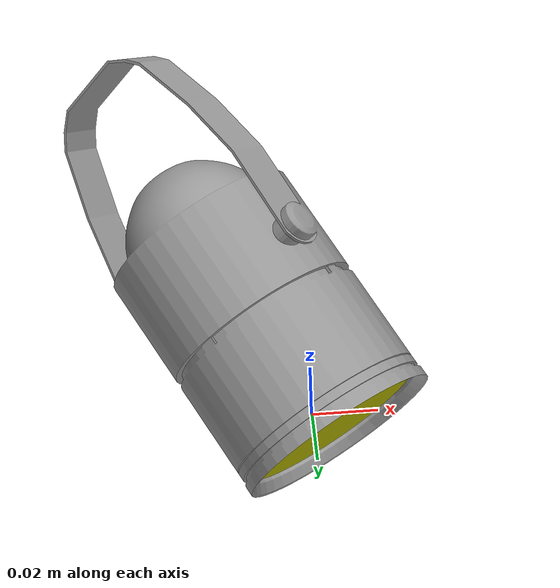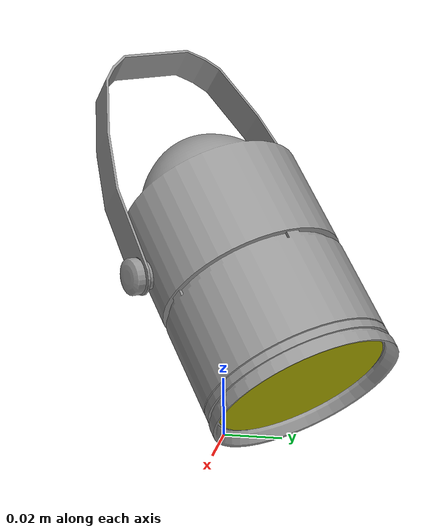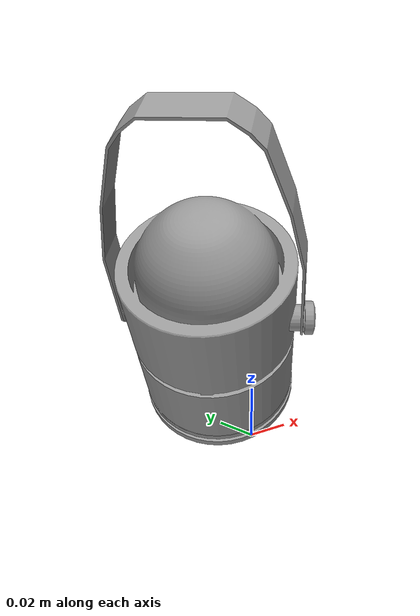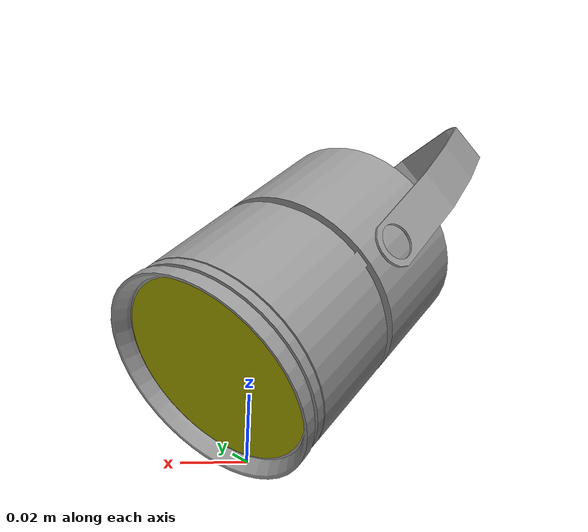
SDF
<?xml version='1.0'?>
<sdf version='1.6'>
  <model name='light'>
    <link name='link_0'>
      <pose frame=''>0.000194 0.001494 0.054387 0 -0 0</pose>
       <visual name='visual'>
        <pose frame=''>0 0 0 0 -0 0</pose>
        <geometry>
          <mesh>
            <uri>model://light/meshes/body.dae</uri>
            <scale>1 1 1</scale>
          </mesh>
        </geometry>
        <material>
          <lighting>1</lighting>
          <script>
            <uri>file://media/materials/scripts/gazebo.material</uri>
            <name>Gazebo/Grey</name>
          </script>
          <ambient>0.1 0.1 0.1 1</ambient>
          <diffuse>0.1 0.1 0.1 1</diffuse>
          <specular>0.01 0.01 0.01 1</specular>
          <emissive>0 0 0 1</emissive>
          <shader type='vertex'>
            <normal_map>__default__</normal_map>
          </shader>
        </material>
        <transparency>0</transparency>
        <cast_shadows>1</cast_shadows>
      </visual>
      <collision name='collision'>
        <laser_retro>0</laser_retro>
        <max_contacts>10</max_contacts>
        <pose frame=''>0 0 0 0 -0 0</pose>
        <geometry>
          <mesh>
            <uri>model://light/meshes/body.dae</uri>
            <scale>1 1 1</scale>
          </mesh>
        </geometry>
        </collision>
    </link>
    <link name='link_1'>
      <pose frame=''>-0.000389 -0.002937 0.071254 0.573662 -0.441163 -0.238641</pose>
      <inertial>
        <mass>1</mass>
        <inertia>
          <ixx>0.166667</ixx>
          <ixy>0</ixy>
          <ixz>0</ixz>
          <iyy>0.166667</iyy>
          <iyz>0</iyz>
          <izz>0.166667</izz>
        </inertia>
        <pose frame=''>0 0 0 0 -0 0</pose>
      </inertial>
      <gravity>1</gravity>
      <self_collide>0</self_collide>
      <kinematic>0</kinematic>
      <visual name='visual'>
        <pose frame=''>0 0 0 0 -0 0</pose>
        <geometry>
          <mesh>
            <uri>model://light/meshes/handle.dae</uri>
            <scale>1 1 1</scale>
          </mesh>
        </geometry>
        <material>
          <lighting>1</lighting>
          <script>
            <uri>file://media/materials/scripts/gazebo.material</uri>
            <name>Gazebo/Grey</name>
          </script>
          <ambient>0.1 0.1 0.1 1</ambient>
          <diffuse>0.1 0.1 0.1 1</diffuse>
          <specular>0.01 0.01 0.01 1</specular>
          <emissive>0 0 0 1</emissive>
          <shader type='vertex'>
            <normal_map>__default__</normal_map>
          </shader>
        </material>
        <transparency>0</transparency>
        <cast_shadows>1</cast_shadows>
      </visual>
      <collision name='collision'>
        <laser_retro>0</laser_retro>
        <max_contacts>10</max_contacts>
        <pose frame=''>0 0 0 0 -0 0</pose>
        <geometry>
          <mesh>
            <uri>model://light/meshes/handle.dae</uri>
            <scale>1 1 1</scale>
          </mesh>
        </geometry>
      </collision>
    </link>
    <link name='link_2'>
      <pose frame=''>0.000194 0.001494 0.054387 0 -0 0</pose>
       <visual name='visual'>
        <pose frame=''>0 0 0 0 -0 0</pose>
        <geometry>
          <mesh>
            <uri>model://light/meshes/lens.dae</uri>
            <scale>1 1 1</scale>
          </mesh>
        </geometry>
        <material>
          <lighting>1</lighting>
          <script>
            <uri>file://media/materials/scripts/gazebo.material</uri>
            <name>Gazebo/Grey</name>
          </script>
          <ambient>0.7 0.7 0 1</ambient>
          <diffuse>0.7 0.7 0 1</diffuse>
          <specular>0.01 0.01 0.01 1</specular>
          <emissive>0 0 0 1</emissive>
          <shader type='vertex'>
            <normal_map>__default__</normal_map>
          </shader>
        </material>
        <transparency>0</transparency>
        <cast_shadows>1</cast_shadows>
      </visual>
      <collision name='collision'>
        <laser_retro>0</laser_retro>
        <max_contacts>10</max_contacts>
        <pose frame=''>0 0 0 0 -0 0</pose>
        <geometry>
          <mesh>
            <uri>model://light/meshes/lens.dae</uri>
            <scale>1 1 1</scale>
          </mesh>
        </geometry>
       </collision>
    </link>
    <static>1</static>
    <allow_auto_disable>1</allow_auto_disable>
  </model>
</sdf>
